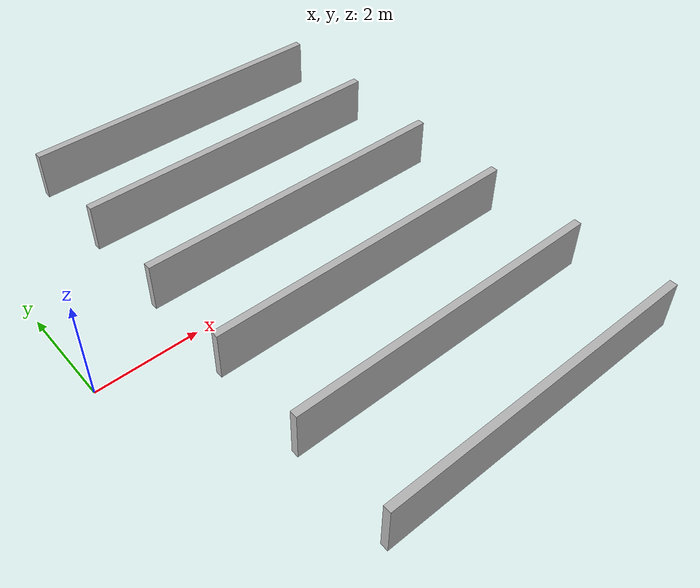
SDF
<?xml version='1.0'?>
<sdf version='1.7'>
  <model name='fence2'>
    <pose>5 0 0 0 -0 0</pose>
    <link name='Wall_0'>
      <collision name='Wall_0_Collision'>
        <geometry>
          <box>
            <size>6.5 0.15 1</size>
          </box>
        </geometry>
        <pose>0 0 0.5 0 -0 0</pose>
      </collision>
      <visual name='Wall_0_Visual'>
        <pose>0 0 0.5 0 -0 0</pose>
        <geometry>
          <box>
            <size>6.5 0.15 1</size>
          </box>
        </geometry>
        <material>
          <script>
            <uri>model://fence2/materials/scripts</uri>
            <uri>model://fence2/materials/textures</uri>
            <name>fence_material</name>
          </script>
        </material>
        <meta>
          <layer>0</layer>
        </meta>
      </visual>
      <pose>0 1 0 0 -0 0</pose>
    </link>
    <link name='Wall_10'>
      <collision name='Wall_10_Collision'>
        <geometry>
          <box>
            <size>6.5 0.15 1</size>
          </box>
        </geometry>
        <pose>0 0 0.5 0 -0 0</pose>
      </collision>
      <visual name='Wall_10_Visual'>
        <pose>0 0 0.5 0 -0 0</pose>
        <geometry>
          <box>
            <size>6.5 0.15 1</size>
          </box>
        </geometry>
        <material>
          <script>
            <uri>model://fence2/materials/scripts</uri>
            <uri>model://fence2/materials/textures</uri>
            <name>fence_material</name>
          </script>
        </material>
        <meta>
          <layer>0</layer>
        </meta>
      </visual>
      <pose>0 -3 0 0 -0 0</pose>
    </link>
    <link name='Wall_12'>
      <collision name='Wall_12_Collision'>
        <geometry>
          <box>
            <size>6.5 0.15 1</size>
          </box>
        </geometry>
        <pose>0 0 0.5 0 -0 0</pose>
      </collision>
      <visual name='Wall_12_Visual'>
        <pose>0 0 0.5 0 -0 0</pose>
        <geometry>
          <box>
            <size>6.5 0.15 1</size>
          </box>
        </geometry>
        <material>
          <script>
            <uri>model://fence2/materials/scripts</uri>
            <uri>model://fence2/materials/textures</uri>
            <name>fence_material</name>
          </script>
        </material>
        <meta>
          <layer>0</layer>
        </meta>
      </visual>
      <pose>0 -5 0 0 -0 0</pose>
    </link>

    <link name='Wall_2'>
      <collision name='Wall_2_Collision'>
        <geometry>
          <box>
            <size>6.5 0.15 1</size>
          </box>
        </geometry>
        <pose>0 0 0.5 0 -0 0</pose>
      </collision>
      <visual name='Wall_2_Visual'>
        <pose>0 0 0.5 0 -0 0</pose>
        <geometry>
          <box>
            <size>6.5 0.15 1</size>
          </box>
        </geometry>
        <material>
          <script>
            <uri>model://fence2/materials/scripts</uri>
            <uri>model://fence2/materials/textures</uri>
            <name>fence_material</name>
          </script>
        </material>
        <meta>
          <layer>0</layer>
        </meta>
      </visual>
      <pose>0 3 0 0 -0 0</pose>
    </link>
    <link name='Wall_4'>
      <collision name='Wall_4_Collision'>
        <geometry>
          <box>
            <size>6.5 0.15 1</size>
          </box>
        </geometry>
        <pose>0 0 0.5 0 -0 0</pose>
      </collision>
      <visual name='Wall_4_Visual'>
        <pose>0 0 0.5 0 -0 0</pose>
        <geometry>
          <box>
            <size>6.5 0.15 1</size>
          </box>
        </geometry>
        <material>
          <script>
            <uri>model://fence2/materials/scripts</uri>
            <uri>model://fence2/materials/textures</uri>
            <name>fence_material</name>
          </script>
        </material>
        <meta>
          <layer>0</layer>
        </meta>
      </visual>
      <pose>0 5 0 0 -0 0</pose>
    </link>

    <link name='Wall_8'>
      <collision name='Wall_8_Collision'>
        <geometry>
          <box>
            <size>6.5 0.15 1</size>
          </box>
        </geometry>
        <pose>0 0 0.5 0 -0 0</pose>
      </collision>
      <visual name='Wall_8_Visual'>
        <pose>0 0 0.5 0 -0 0</pose>
        <geometry>
          <box>
            <size>6.5 0.15 1</size>
          </box>
        </geometry>
        <material>
          <script>
            <uri>model://fence2/materials/scripts</uri>
            <uri>model://fence2/materials/textures</uri>
            <name>fence_material</name>
          </script>
        </material>
        <meta>
          <layer>0</layer>
        </meta>
      </visual>
      <pose>0 -1 0 0 -0 0</pose>
    </link>
    <static>1</static>
  </model>
</sdf>
